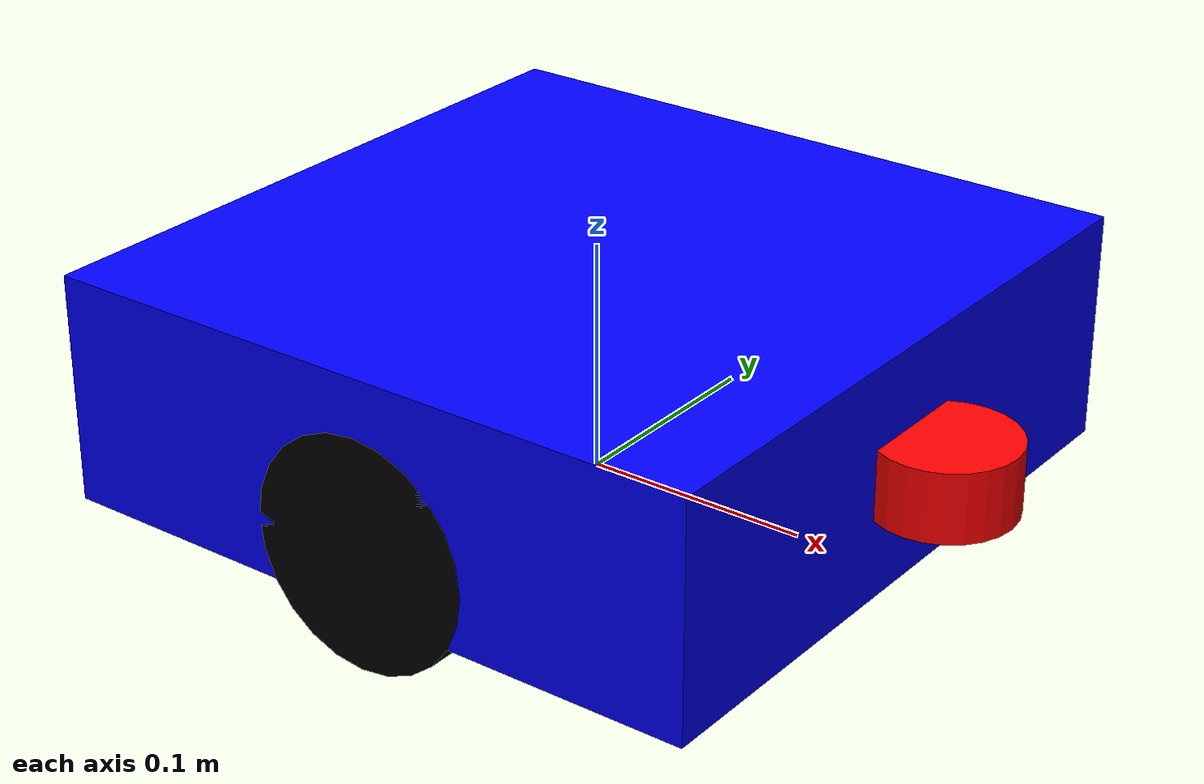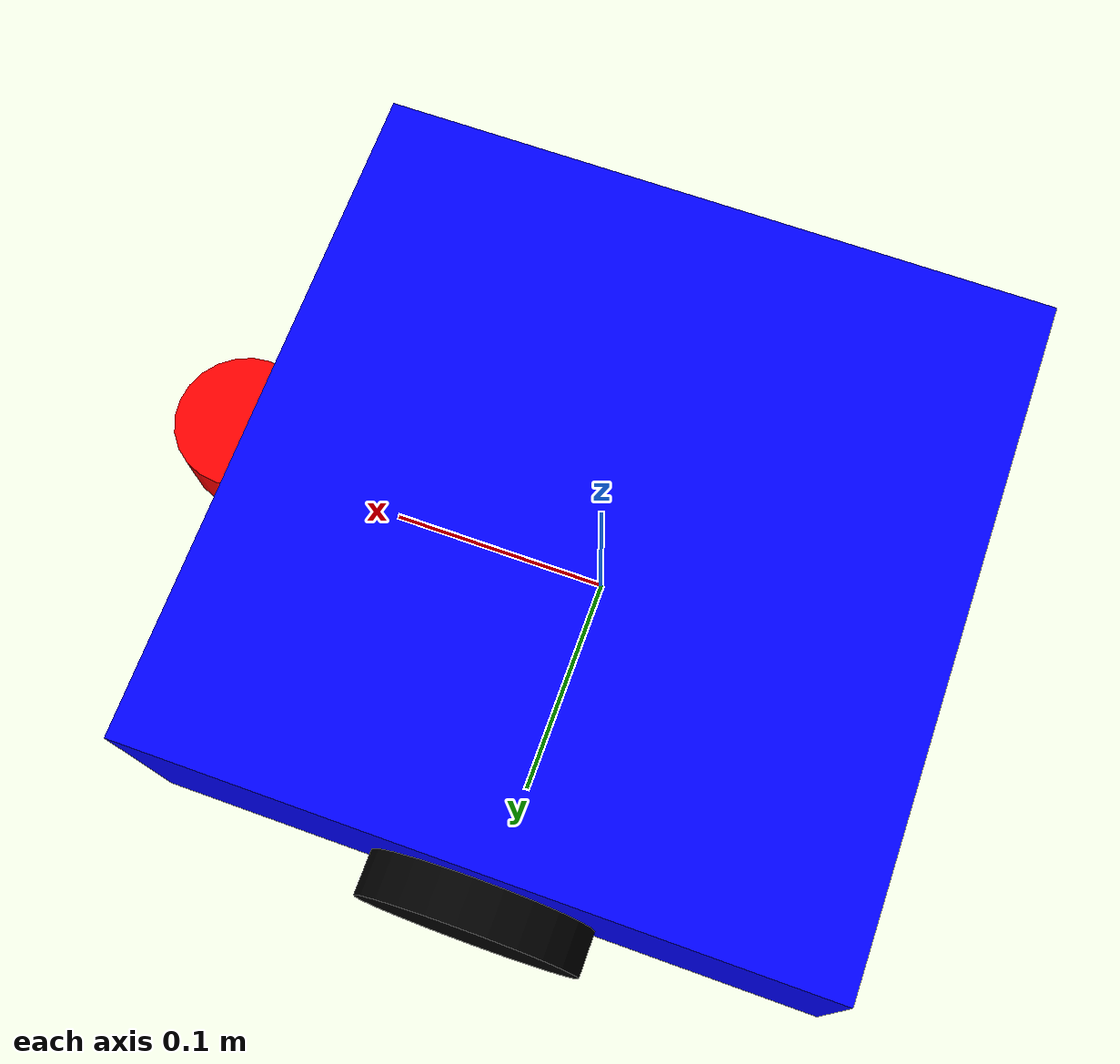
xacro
<?xml version="1.0"?>
<robot name="box_bot" xmlns:xacro="http://ros.org/wiki/xacro">

  <xacro:property name="chassis_mass" value="1.0" />
  <xacro:property name="chassis_width" value="0.3" />
  <xacro:property name="chassis_depth" value="0.3" />
  <xacro:property name="chassis_height" value="0.1" />
  <xacro:property name="wheel_radius" value="0.05" />
  <xacro:property name="wheel_width" value="0.02" />

  <link name="base_link">
  </link>

  <link name="chassis">
    <visual>
      <geometry>
        <box size="${chassis_depth} ${chassis_width} ${chassis_height}"/>
      </geometry>
      <material name="blue">
        <color rgba="0 0 1 1"/>
      </material>
    </visual>
    <collision>
      <geometry>
        <box size="${chassis_depth} ${chassis_width} ${chassis_height}"/>
      </geometry>
    </collision>
    <inertial>
      <mass value="${chassis_mass}"/>
      <inertia ixx="0.01" ixy="0" ixz="0" iyy="0.01" iyz="0" izz="0.01"/>
    </inertial>
  </link>

  <joint name="base_link_joint" type="fixed">
    <parent link="base_link"/>
    <child link="chassis"/>
    <origin xyz="0 0 ${wheel_radius}" rpy="0 0 0"/>
  </joint>

  <xacro:macro name="wheel" params="name y_offset">
    <link name="${name}_wheel">
      <visual>
        <geometry>
          <cylinder radius="${wheel_radius}" length="${wheel_width}"/>
        </geometry>
        <material name="black">
          <color rgba="0 0 0 1"/>
        </material>
      </visual>
      <collision>
        <geometry>
          <cylinder radius="${wheel_radius}" length="${wheel_width}"/>
        </geometry>
      </collision>
      <inertial>
        <mass value="0.1"/>
        <inertia ixx="0.0001" ixy="0" ixz="0" iyy="0.0001" iyz="0" izz="0.0001"/>
      </inertial>
    </link>

    <joint name="${name}_wheel_joint" type="continuous">
      <parent link="chassis"/>
      <child link="${name}_wheel"/>
      <origin xyz="0 ${y_offset} -0.025" rpy="${-pi/2} 0 0"/>
      <axis xyz="0 0 1"/>
    </joint>
  </xacro:macro>

  <xacro:wheel name="left" y_offset="${chassis_width/2 + wheel_width/2}"/>
  <xacro:wheel name="right" y_offset="-${chassis_width/2 - wheel_width/2}"/>

  <link name="caster_wheel">
    <visual>
      <geometry>
        <sphere radius="0.025"/>
      </geometry>
      <material name="white">
        <color rgba="1 1 1 1"/>
      </material>
    </visual>
    <collision>
      <geometry>
        <sphere radius="0.025"/>
      </geometry>
    </collision>
    <inertial>
      <mass value="0.05"/>
      <inertia ixx="0.0001" ixy="0" ixz="0" iyy="0.0001" iyz="0" izz="0.0001"/>
    </inertial>
  </link>

  <joint name="caster_wheel_joint" type="fixed">
    <parent link="chassis"/>
    <child link="caster_wheel"/>
    <origin xyz="${chassis_depth/2 - 0.05} 0 -0.025"/>
  </joint>

  <link name="laser_link">
    <visual>
      <geometry>
        <cylinder radius="0.03" length="0.03"/>
      </geometry>
      <material name="red">
         <color rgba="1 0 0 1"/>
      </material>
    </visual>
    <collision>
       <geometry>
        <cylinder radius="0.03" length="0.03"/>
      </geometry>
    </collision>
    <inertial>
      <mass value="0.1"/>
      <inertia ixx="0.0001" ixy="0" ixz="0" iyy="0.0001" iyz="0" izz="0.0001"/>
    </inertial>
  </link>

  <joint name="laser_joint" type="fixed">
    <parent link="chassis"/>
    <child link="laser_link"/>
    <origin xyz="${chassis_depth/2 + 0.015} 0 0.0" rpy="0 0 0"/>
  </joint>

  <gazebo reference="laser_link">
    <sensor name="lidar" type="ray">
      <always_on>true</always_on>
      <visualize>false</visualize>
      <update_rate>10</update_rate>
      <ray>
        <scan>
          <horizontal>
            <samples>360</samples>
            <resolution>1</resolution>
            <min_angle>-1.570796</min_angle>
            <max_angle>1.570796</max_angle>
          </horizontal>
        </scan>
        <range>
          <min>0.12</min>
          <max>5.0</max>
          <resolution>0.01</resolution>
        </range>
      </ray>
      <plugin name="scan" filename="libgazebo_ros_ray_sensor.so">
        <ros>
          <remapping>~/out:=scan</remapping>
        </ros>
        <output_type>sensor_msgs/LaserScan</output_type>
        <frame_name>laser_link</frame_name>
      </plugin>
    </sensor>
  </gazebo>

  <gazebo>
    <plugin name="diff_drive" filename="libgazebo_ros_diff_drive.so">
      <left_joint>left_wheel_joint</left_joint>
      <right_joint>right_wheel_joint</right_joint>
      <wheel_separation>0.3</wheel_separation>
      <wheel_diameter>0.1</wheel_diameter>
      <command_topic>cmd_vel</command_topic>
      <odometry_topic>odom</odometry_topic>
      <odometry_frame>odom</odometry_frame>
      <robot_base_frame>base_link</robot_base_frame>
      <publish_odom>true</publish_odom>
      <publish_odom_tf>true</publish_odom_tf>
    </plugin>
  </gazebo>

</robot>
